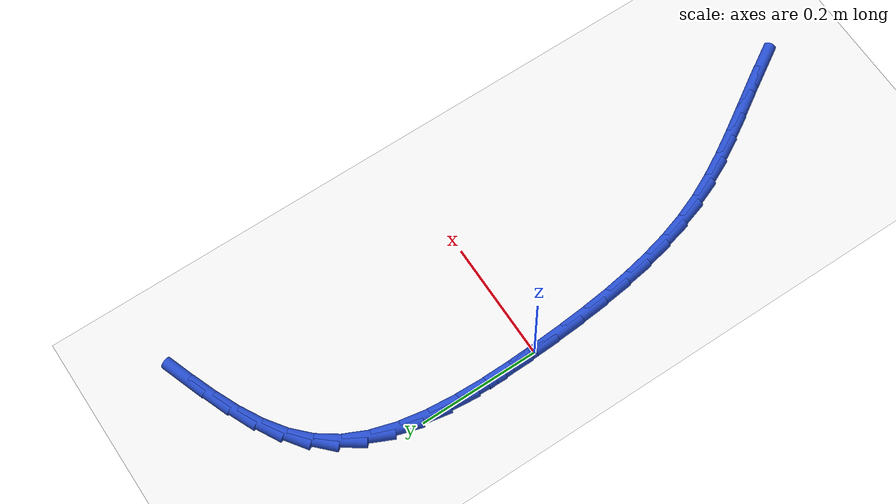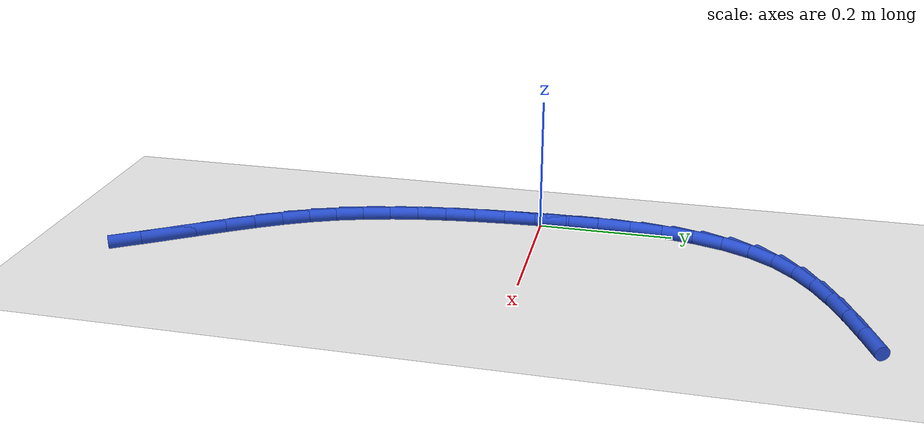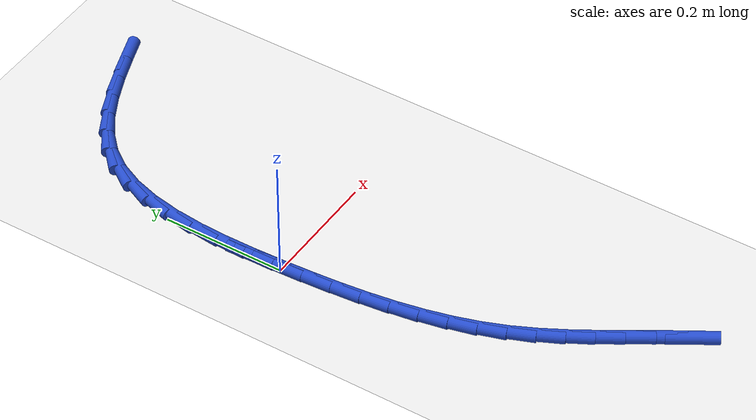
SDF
<sdf version="1.6">
 <world name="default">
  <model name="ground_plane">
   <static>1</static>
   <link name="link">
    <collision name="collision">
     <geometry><plane><normal>0 0 1</normal><size>100 100</size></plane></geometry>
     <surface><friction><ode><mu>100</mu><mu2>50</mu2></ode></friction></surface>
    </collision>
    <visual name="visual">
     <cast_shadows>0</cast_shadows>
     <geometry><plane><normal>0 0 1</normal><size>100 100</size></plane></geometry>
     <material>
      <script><uri>file://media/materials/scripts/gazebo.material</uri><name>Gazebo/WhiteGlow</name></script>
     </material>
    </visual>
   </link>
  </model>
  <model name="line">
   <link name="link_0">
    <pose>-2.325613659981407e-17 -9.71445146547012e-17 0.01 0 1.57 -1.5345342746365358</pose>
    <collision name="collision">
     <geometry><cylinder><radius>0.01</radius><length>0.08</length></cylinder></geometry>
    </collision>
    <visual name="visual">
     <material>
      <script><name>Gazebo/Blue</name><uri>file://media/materials/scripts/gazebo.material</uri></script>
     </material>
     <geometry><cylinder><radius>0.01</radius><length>0.08</length></cylinder></geometry>
    </visual>
   </link>
   <link name="link_1">
    <pose>-0.0017730698657499131 0.04887458194099907 0.01 0 1.57 -1.564282334503172</pose>
    <collision name="collision">
     <geometry><cylinder><radius>0.01</radius><length>0.08</length></cylinder></geometry>
    </collision>
    <visual name="visual">
     <material>
      <script><name>Gazebo/Blue</name><uri>file://media/materials/scripts/gazebo.material</uri></script>
     </material>
     <geometry><cylinder><radius>0.01</radius><length>0.08</length></cylinder></geometry>
    </visual>
   </link>
   <link name="link_2">
    <pose>-0.002092094714657815 0.09784920799371946 0.01 0 1.57 1.532465089876885</pose>
    <collision name="collision">
     <geometry><cylinder><radius>0.01</radius><length>0.08</length></cylinder></geometry>
    </collision>
    <visual name="visual">
     <material>
      <script><name>Gazebo/Blue</name><uri>file://media/materials/scripts/gazebo.material</uri></script>
     </material>
     <geometry><cylinder><radius>0.01</radius><length>0.08</length></cylinder></geometry>
    </visual>
   </link>
   <link name="link_3">
    <pose>-0.0002402795984857123 0.14613640738703232 0.01 0 1.57 1.4698964536522816</pose>
    <collision name="collision">
     <geometry><cylinder><radius>0.01</radius><length>0.08</length></cylinder></geometry>
    </collision>
    <visual name="visual">
     <material>
      <script><name>Gazebo/Blue</name><uri>file://media/materials/scripts/gazebo.material</uri></script>
     </material>
     <geometry><cylinder><radius>0.01</radius><length>0.08</length></cylinder></geometry>
    </visual>
   </link>
   <link name="link_4">
    <pose>0.004499170431004423 0.19294870934980896 0.01 0 1.57 1.3856485894613713</pose>
    <collision name="collision">
     <geometry><cylinder><radius>0.01</radius><length>0.08</length></cylinder></geometry>
    </collision>
    <visual name="visual">
     <material>
      <script><name>Gazebo/Blue</name><uri>file://media/materials/scripts/gazebo.material</uri></script>
     </material>
     <geometry><cylinder><radius>0.01</radius><length>0.08</length></cylinder></geometry>
    </visual>
   </link>
   <link name="link_5">
    <pose>0.012843050322050607 0.23749864311092053 0.01 0 1.57 1.2745917084094178</pose>
    <collision name="collision">
     <geometry><cylinder><radius>0.01</radius><length>0.08</length></cylinder></geometry>
    </collision>
    <visual name="visual">
     <material>
      <script><name>Gazebo/Blue</name><uri>file://media/materials/scripts/gazebo.material</uri></script>
     </material>
     <geometry><cylinder><radius>0.01</radius><length>0.08</length></cylinder></geometry>
    </visual>
   </link>
   <link name="link_6">
    <pose>0.025508155022890854 0.27899873789923846 0.01 0 1.57 1.1314003074158698</pose>
    <collision name="collision">
     <geometry><cylinder><radius>0.01</radius><length>0.08</length></cylinder></geometry>
    </collision>
    <visual name="visual">
     <material>
      <script><name>Gazebo/Blue</name><uri>file://media/materials/scripts/gazebo.material</uri></script>
     </material>
     <geometry><cylinder><radius>0.01</radius><length>0.08</length></cylinder></geometry>
    </visual>
   </link>
   <link name="link_7">
    <pose>0.0432112794817632 0.3166615229436339 0.01 0 1.57 0.9535133175750906</pose>
    <collision name="collision">
     <geometry><cylinder><radius>0.01</radius><length>0.08</length></cylinder></geometry>
    </collision>
    <visual name="visual">
     <material>
      <script><name>Gazebo/Blue</name><uri>file://media/materials/scripts/gazebo.material</uri></script>
     </material>
     <geometry><cylinder><radius>0.01</radius><length>0.08</length></cylinder></geometry>
    </visual>
   </link>
   <link name="link_8">
    <pose>0.06666508117431777 0.34970364724908787 0.01 0 1.57 0.7637369404351307</pose>
    <collision name="collision">
     <geometry><cylinder><radius>0.01</radius><length>0.08</length></cylinder></geometry>
    </collision>
    <visual name="visual">
     <material>
      <script><name>Gazebo/Blue</name><uri>file://media/materials/scripts/gazebo.material</uri></script>
     </material>
     <geometry><cylinder><radius>0.01</radius><length>0.08</length></cylinder></geometry>
    </visual>
   </link>
   <link name="link_9">
    <pose>0.0960650317192045 0.377856733610171 0.01 0 1.57 0.6075145350101361</pose>
    <collision name="collision">
     <geometry><cylinder><radius>0.01</radius><length>0.08</length></cylinder></geometry>
    </collision>
    <visual name="visual">
     <material>
      <script><name>Gazebo/Blue</name><uri>file://media/materials/scripts/gazebo.material</uri></script>
     </material>
     <geometry><cylinder><radius>0.01</radius><length>0.08</length></cylinder></geometry>
    </visual>
   </link>
   <link name="link_10">
    <pose>0.13059312312173357 0.40186154965805326 0.01 0 1.57 0.49123489484391397</pose>
    <collision name="collision">
     <geometry><cylinder><radius>0.01</radius><length>0.08</length></cylinder></geometry>
    </collision>
    <visual name="visual">
     <material>
      <script><name>Gazebo/Blue</name><uri>file://media/materials/scripts/gazebo.material</uri></script>
     </material>
     <geometry><cylinder><radius>0.01</radius><length>0.08</length></cylinder></geometry>
    </visual>
   </link>
   <link name="link_11">
    <pose>0.16931363514230593 0.42257607179909024 0.01 0 1.57 0.4107531212111513</pose>
    <collision name="collision">
     <geometry><cylinder><radius>0.01</radius><length>0.08</length></cylinder></geometry>
    </collision>
    <visual name="visual">
     <material>
      <script><name>Gazebo/Blue</name><uri>file://media/materials/scripts/gazebo.material</uri></script>
     </material>
     <geometry><cylinder><radius>0.01</radius><length>0.08</length></cylinder></geometry>
    </visual>
   </link>
   <link name="link_12">
    <pose>0.21129084754132257 0.4408582764396364 0.01 0 1.57 0.36067008310193</pose>
    <collision name="collision">
     <geometry><cylinder><radius>0.01</radius><length>0.08</length></cylinder></geometry>
    </collision>
    <visual name="visual">
     <material>
      <script><name>Gazebo/Blue</name><uri>file://media/materials/scripts/gazebo.material</uri></script>
     </material>
     <geometry><cylinder><radius>0.01</radius><length>0.08</length></cylinder></geometry>
    </visual>
   </link>
   <link name="link_13">
    <pose>0.2555890400791845 0.45756613998604706 0.01 0 1.57 0.33671948561787396</pose>
    <collision name="collision">
     <geometry><cylinder><radius>0.01</radius><length>0.08</length></cylinder></geometry>
    </collision>
    <visual name="visual">
     <material>
      <script><name>Gazebo/Blue</name><uri>file://media/materials/scripts/gazebo.material</uri></script>
     </material>
     <geometry><cylinder><radius>0.01</radius><length>0.08</length></cylinder></geometry>
    </visual>
   </link>
   <link name="link_166">
    <pose>0.19669138890185814 -0.5777236837840353 0.01 0 1.57 -1.016334032914108</pose>
    <collision name="collision">
     <geometry><cylinder><radius>0.01</radius><length>0.08</length></cylinder></geometry>
    </collision>
    <visual name="visual">
     <material>
      <script><name>Gazebo/Blue</name><uri>file://media/materials/scripts/gazebo.material</uri></script>
     </material>
     <geometry><cylinder><radius>0.01</radius><length>0.08</length></cylinder></geometry>
    </visual>
   </link>
   <link name="link_167">
    <pose>0.1719332347475887 -0.5377435723011263 0.01 0 1.57 -1.004797708129864</pose>
    <collision name="collision">
     <geometry><cylinder><radius>0.01</radius><length>0.08</length></cylinder></geometry>
    </collision>
    <visual name="visual">
     <material>
      <script><name>Gazebo/Blue</name><uri>file://media/materials/scripts/gazebo.material</uri></script>
     </material>
     <geometry><cylinder><radius>0.01</radius><length>0.08</length></cylinder></geometry>
    </visual>
   </link>
   <link name="link_168">
    <pose>0.1476694578459037 -0.49955320718428087 0.01 0 1.57 -1.008931493808811</pose>
    <collision name="collision">
     <geometry><cylinder><radius>0.01</radius><length>0.08</length></cylinder></geometry>
    </collision>
    <visual name="visual">
     <material>
      <script><name>Gazebo/Blue</name><uri>file://media/materials/scripts/gazebo.material</uri></script>
     </material>
     <geometry><cylinder><radius>0.01</radius><length>0.08</length></cylinder></geometry>
    </visual>
   </link>
   <link name="link_169">
    <pose>0.12433855594647931 -0.4624935827479263 0.01 0 1.57 -1.0302402712582608</pose>
    <collision name="collision">
     <geometry><cylinder><radius>0.01</radius><length>0.08</length></cylinder></geometry>
    </collision>
    <visual name="visual">
     <material>
      <script><name>Gazebo/Blue</name><uri>file://media/materials/scripts/gazebo.material</uri></script>
     </material>
     <geometry><cylinder><radius>0.01</radius><length>0.08</length></cylinder></geometry>
    </visual>
   </link>
   <link name="link_170">
    <pose>0.10237902679899111 -0.4259056933064897 0.01 0 1.57 -1.0695553601422163</pose>
    <collision name="collision">
     <geometry><cylinder><radius>0.01</radius><length>0.08</length></cylinder></geometry>
    </collision>
    <visual name="visual">
     <material>
      <script><name>Gazebo/Blue</name><uri>file://media/materials/scripts/gazebo.material</uri></script>
     </material>
     <geometry><cylinder><radius>0.01</radius><length>0.08</length></cylinder></geometry>
    </visual>
   </link>
   <link name="link_171">
    <pose>0.08222936815311614 -0.38913053317440066 0.01 0 1.57 -1.1266735545531525</pose>
    <collision name="collision">
     <geometry><cylinder><radius>0.01</radius><length>0.08</length></cylinder></geometry>
    </collision>
    <visual name="visual">
     <material>
      <script><name>Gazebo/Blue</name><uri>file://media/materials/scripts/gazebo.material</uri></script>
     </material>
     <geometry><cylinder><radius>0.01</radius><length>0.08</length></cylinder></geometry>
    </visual>
   </link>
   <link name="link_172">
    <pose>0.0643280777585301 -0.3515090966660863 0.01 0 1.57 -1.198357278176825</pose>
    <collision name="collision">
     <geometry><cylinder><radius>0.01</radius><length>0.08</length></cylinder></geometry>
    </collision>
    <visual name="visual">
     <material>
      <script><name>Gazebo/Blue</name><uri>file://media/materials/scripts/gazebo.material</uri></script>
     </material>
     <geometry><cylinder><radius>0.01</radius><length>0.08</length></cylinder></geometry>
    </visual>
   </link>
   <link name="link_173">
    <pose>0.0490635122937069 -0.3124364900917516 0.01 0 1.57 -1.2687166324829788</pose>
    <collision name="collision">
     <geometry><cylinder><radius>0.01</radius><length>0.08</length></cylinder></geometry>
    </collision>
    <visual name="visual">
     <material>
      <script><name>Gazebo/Blue</name><uri>file://media/materials/scripts/gazebo.material</uri></script>
     </material>
     <geometry><cylinder><radius>0.01</radius><length>0.08</length></cylinder></geometry>
    </visual>
   </link>
   <link name="link_174">
    <pose>0.03639232353255793 -0.2717737135570988 0.01 0 1.57 -1.3302228413602262</pose>
    <collision name="collision">
     <geometry><cylinder><radius>0.01</radius><length>0.08</length></cylinder></geometry>
    </collision>
    <visual name="visual">
     <material>
      <script><name>Gazebo/Blue</name><uri>file://media/materials/scripts/gazebo.material</uri></script>
     </material>
     <geometry><cylinder><radius>0.01</radius><length>0.08</length></cylinder></geometry>
    </visual>
   </link>
   <link name="link_175">
    <pose>0.026050861164869165 -0.22961951608623354 0.01 0 1.57 -1.382954480478879</pose>
    <collision name="collision">
     <geometry><cylinder><radius>0.01</radius><length>0.08</length></cylinder></geometry>
    </collision>
    <visual name="visual">
     <material>
      <script><name>Gazebo/Blue</name><uri>file://media/materials/scripts/gazebo.material</uri></script>
     </material>
     <geometry><cylinder><radius>0.01</radius><length>0.08</length></cylinder></geometry>
    </visual>
   </link>
   <link name="link_176">
    <pose>0.01777371246983104 -0.18607454868804857 0.01 0 1.57 -1.4272988685837262</pose>
    <collision name="collision">
     <geometry><cylinder><radius>0.01</radius><length>0.08</length></cylinder></geometry>
    </collision>
    <visual name="visual">
     <material>
      <script><name>Gazebo/Blue</name><uri>file://media/materials/scripts/gazebo.material</uri></script>
     </material>
     <geometry><cylinder><radius>0.01</radius><length>0.08</length></cylinder></geometry>
    </visual>
   </link>
   <link name="link_177">
    <pose>0.01129546472663454 -0.14123946237143956 0.01 0 1.57 -1.4637694402570753</pose>
    <collision name="collision">
     <geometry><cylinder><radius>0.01</radius><length>0.08</length></cylinder></geometry>
    </collision>
    <visual name="visual">
     <material>
      <script><name>Gazebo/Blue</name><uri>file://media/materials/scripts/gazebo.material</uri></script>
     </material>
     <geometry><cylinder><radius>0.01</radius><length>0.08</length></cylinder></geometry>
    </visual>
   </link>
   <link name="link_178">
    <pose>0.006350705214470108 -0.09521490814529929 0.01 0 1.57 -1.4929150951797314</pose>
    <collision name="collision">
     <geometry><cylinder><radius>0.01</radius><length>0.08</length></cylinder></geometry>
    </collision>
    <visual name="visual">
     <material>
      <script><name>Gazebo/Blue</name><uri>file://media/materials/scripts/gazebo.material</uri></script>
     </material>
     <geometry><cylinder><radius>0.01</radius><length>0.08</length></cylinder></geometry>
    </visual>
   </link>
   <link name="link_179">
    <pose>0.0026740212125283755 -0.048101537018521524 0.01 0 1.57 -1.5152623065842474</pose>
    <collision name="collision">
     <geometry><cylinder><radius>0.01</radius><length>0.08</length></cylinder></geometry>
    </collision>
    <visual name="visual">
     <material>
      <script><name>Gazebo/Blue</name><uri>file://media/materials/scripts/gazebo.material</uri></script>
     </material>
     <geometry><cylinder><radius>0.01</radius><length>0.08</length></cylinder></geometry>
    </visual>
   </link>
   <link name="link_180">
    <pose>-3.016792544940916e-17 -4.163336342344337e-17 0.01 0 1.57 -1.5312821301065374</pose>
    <collision name="collision">
     <geometry><cylinder><radius>0.01</radius><length>0.08</length></cylinder></geometry>
    </collision>
    <visual name="visual">
     <material>
      <script><name>Gazebo/Blue</name><uri>file://media/materials/scripts/gazebo.material</uri></script>
     </material>
     <geometry><cylinder><radius>0.01</radius><length>0.08</length></cylinder></geometry>
    </visual>
   </link>
   <link name="link_181">
    <pose>-0.0019367711439244768 0.04898905190137143 0.01 0 1.57 -1.5312821301065371</pose>
    <collision name="collision">
     <geometry><cylinder><radius>0.01</radius><length>0.08</length></cylinder></geometry>
    </collision>
    <visual name="visual">
     <material>
      <script><name>Gazebo/Blue</name><uri>file://media/materials/scripts/gazebo.material</uri></script>
     </material>
     <geometry><cylinder><radius>0.01</radius><length>0.08</length></cylinder></geometry>
    </visual>
   </link>
  </model>
 </world>
</sdf>
